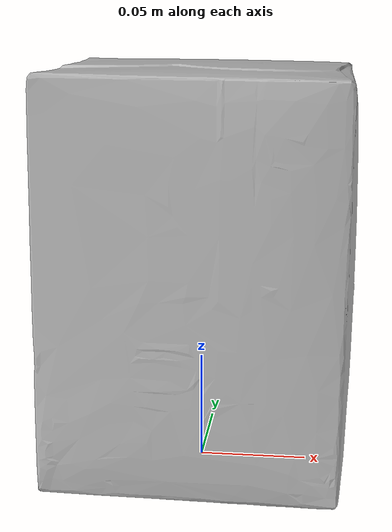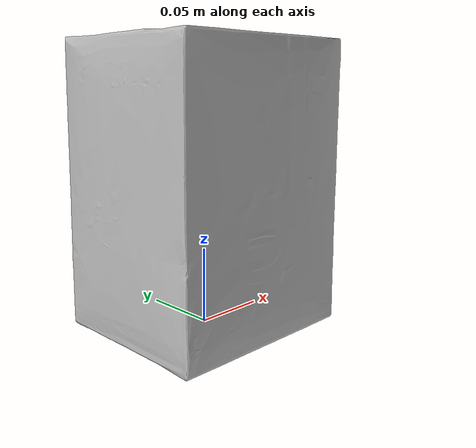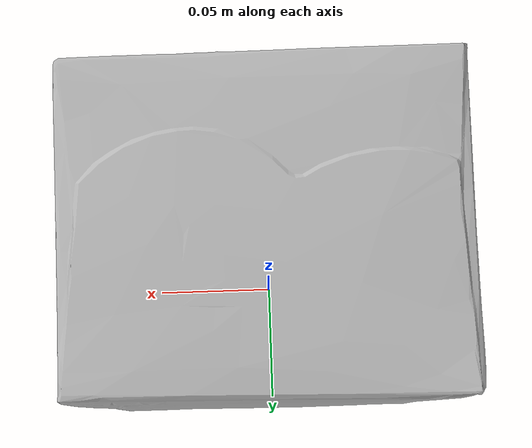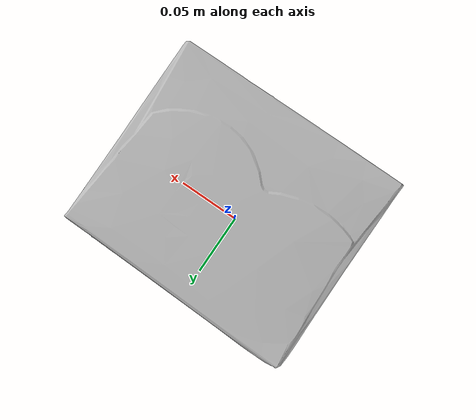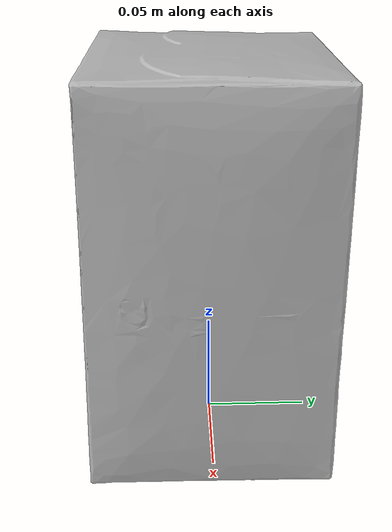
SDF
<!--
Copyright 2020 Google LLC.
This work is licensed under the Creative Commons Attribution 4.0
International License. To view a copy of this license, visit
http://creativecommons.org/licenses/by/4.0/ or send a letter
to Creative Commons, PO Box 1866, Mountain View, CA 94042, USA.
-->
<?xml version="1.0" ?>
<sdf version="1.6">
  <model name="U_By_Kotex_Cleanwear_Heavy_Flow_Pads_32_Ct">
    <link name="link_0">
      <visual name="visual">
        <geometry>
          <mesh>
            <uri>meshes/model.obj</uri>
          </mesh>
        </geometry>
      </visual>
      <collision name="collision_0">
        <geometry>
          <mesh>
            <uri>meshes/model.obj</uri>
          </mesh>
        </geometry>
      </collision>
    </link>
  </model>
</sdf>
